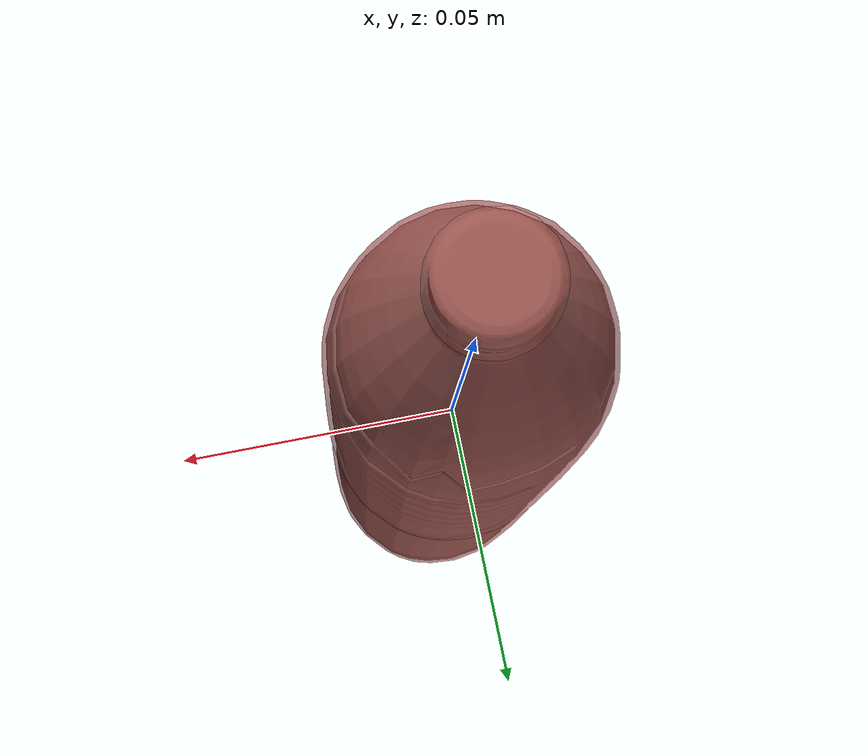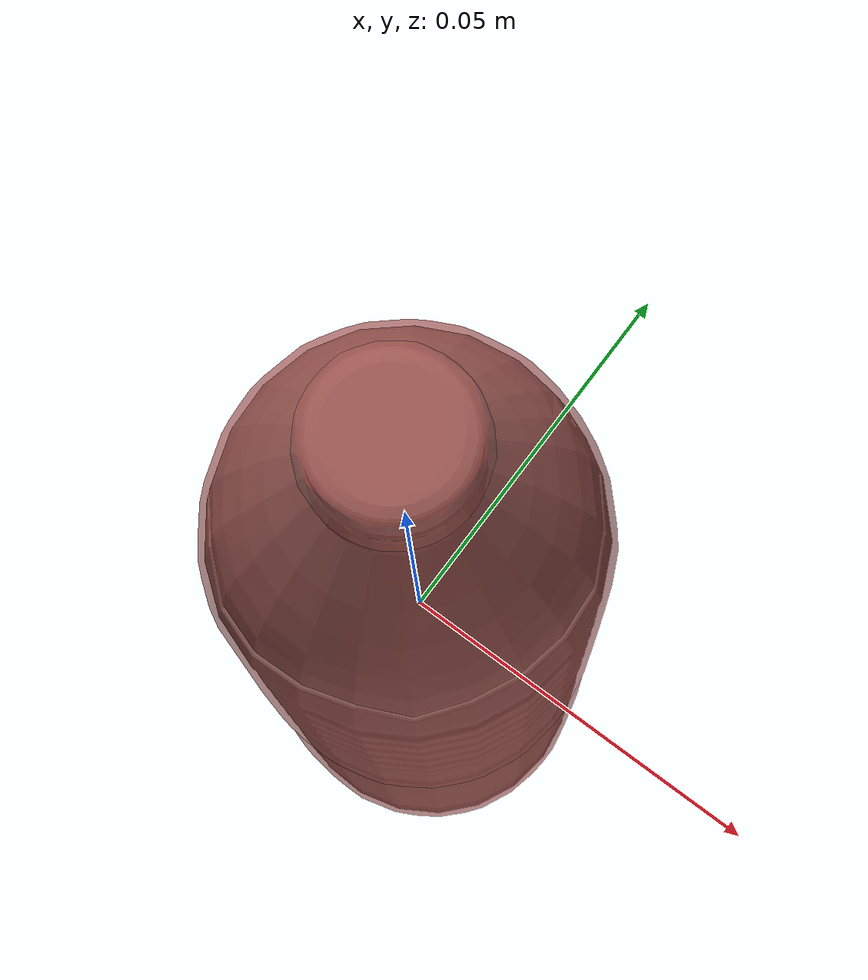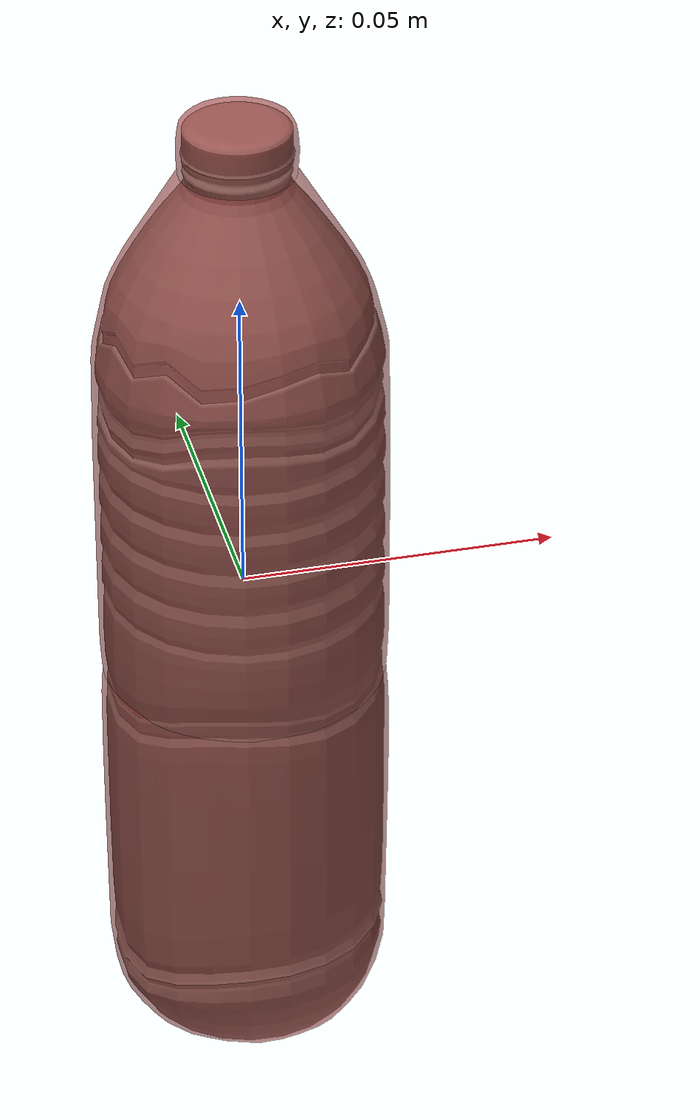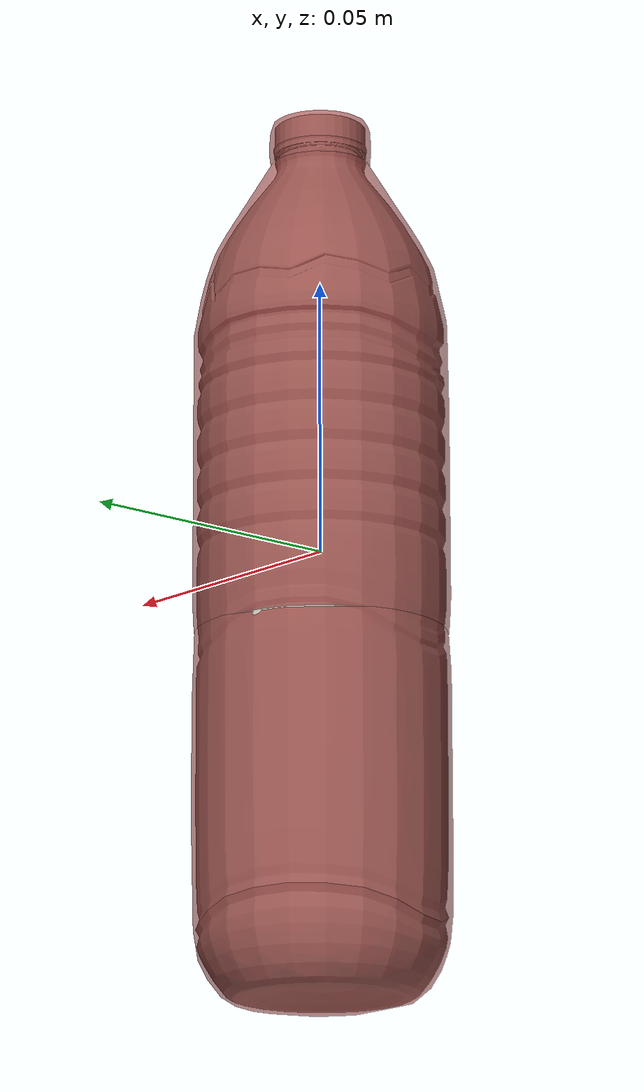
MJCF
<?xml version='1.0' encoding='utf-8'?>
<mujoco model="bottled_water_27">
  <asset>
    <mesh file="visual/model_normalized_0.obj" name="model_normalized_0_vis" scale="0.16 0.16 0.16" refquat="1.0 0.0 0.0 0.0" />
    <texture type="2d" name="image0" file="visual/image0.png" />
    <material name="Material.049" texture="image0" specular="0.5" shininess="0.25" />
    <mesh file="collision/collision_mesh_collision_0.obj" name="bottled_collision_mesh_0" scale="0.16 0.16 0.16" refquat="1.0 0.0 0.0 0.0" />
    <mesh file="collision/collision_mesh_collision_1.obj" name="bottled_collision_mesh_1" scale="0.16 0.16 0.16" refquat="1.0 0.0 0.0 0.0" />
    <mesh file="collision/collision_mesh_collision_2.obj" name="bottled_collision_mesh_2" scale="0.16 0.16 0.16" refquat="1.0 0.0 0.0 0.0" />
    </asset>
  <default>
    <default class="region">
      <geom group="1" conaffinity="0" contype="0" rgba="0 1 0 0" />
      </default>
    <default class="collision">
      <geom group="0" rgba="0.5 0 0 0.5" density="1000.0" />
      </default>
    </default>
  <worldbody>
    <body>
      <body name="object">
        <geom solimp="0.998 0.998 0.001" solref="0.001 1" density="100" friction="0.95 0.3 0.1" type="mesh" mesh="model_normalized_0_vis" conaffinity="0" contype="0" group="1" material="Material.049" />
        <geom class="region" name="reg_bbox" type="box" pos="0.00022926 -0.00010691840000000008 -0.0003409912000000015" size="0.0218232672 0.0216597728 0.0795998904" />
        <geom mesh="bottled_collision_mesh_0" type="mesh" class="collision" />
        <geom mesh="bottled_collision_mesh_1" type="mesh" class="collision" />
        <geom mesh="bottled_collision_mesh_2" type="mesh" class="collision" />
        </body>
      </body>
    </worldbody>
  </mujoco>
